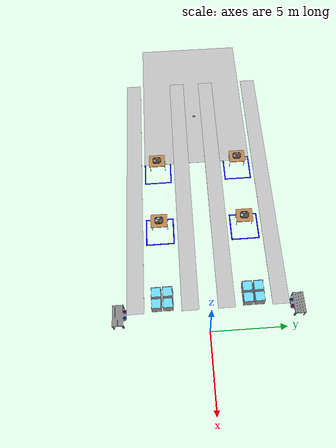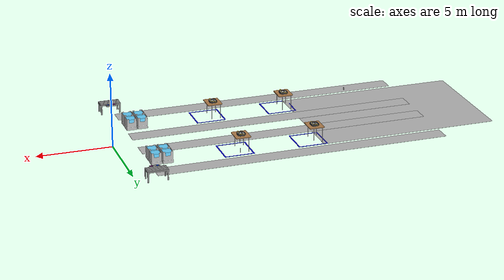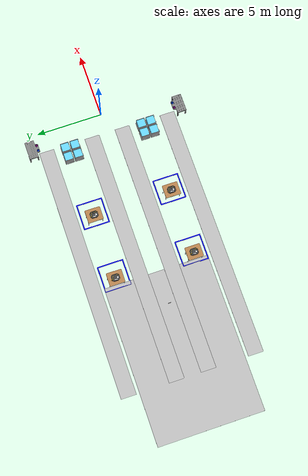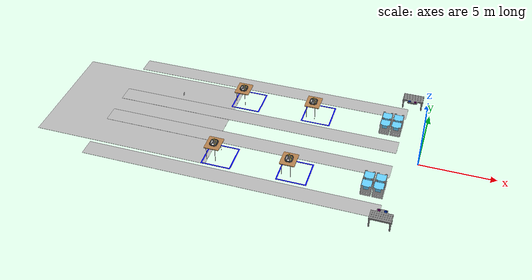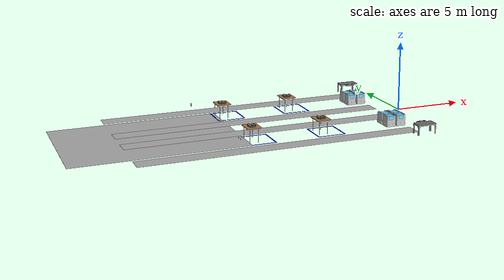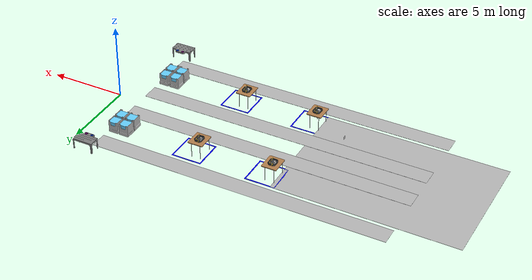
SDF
<sdf version="1.5">
 <world name="world">
  <scene>
   <shadows>0</shadows>
   <grid>0</grid>
   <origin_visual>0</origin_visual>
   <ambient>0.25 0.25 0.25 1</ambient>
   <background>0.5 0.5 0.5 1</background>
  </scene>
  <light type="directional" name="sun">
   <pose>0 0 10 0 0 0</pose>
   <diffuse>0.8 0.8 0.8 1</diffuse>
   <specular>0.2 0.2 0.2 1</specular>
   <attenuation>
    <range>1000</range>
    <constant>0.9</constant>
    <linear>0.01</linear>
    <quadratic>0.001</quadratic>
   </attenuation>
   <direction>-0.5 0.1 -0.9</direction>
  </light>
  <include>
   <name>aruco</name>
   <uri>model://aruco_marker_0</uri>
   <pose>-15.896166 0.011203 2.0 0 0 0</pose>
  </include>
  <include><name>agv_path_1</name><uri>model://agv_path</uri><pose>-1.5 4.8 0 0 0 0</pose></include>
  <include><name>agv_path_2</name><uri>model://agv_path</uri><pose>-1.5 1.2 0 0 0 0</pose></include>
  <include><name>agv_path_3</name><uri>model://agv_path</uri><pose>-1.5 -1.2 0 0 0 0</pose></include>
  <include><name>agv_path_4</name><uri>model://agv_path</uri><pose>-1.5 -4.8 0 0 0 0</pose></include>
  <include><name>warehouse</name><uri>model://warehouse</uri><pose>-19 0 0 0 0 0</pose></include>
  <include><name>bin1</name><uri>model://parts_bin</uri><pose>-1.9 3.375 0 0 0 3.1416</pose></include>
  <include><name>bin2</name><uri>model://parts_bin</uri><pose>-1.9 2.625 0 0 0 3.1416</pose></include>
  <include><name>bin3</name><uri>model://parts_bin</uri><pose>-2.65 2.625 0 0 0 3.1416</pose></include>
  <include><name>bin4</name><uri>model://parts_bin</uri><pose>-2.65 3.375 0 0 0 3.1416</pose></include>
  <include><name>bin5</name><uri>model://parts_bin</uri><pose>-1.9 -3.375 0 0 0 3.1416</pose></include>
  <include><name>bin6</name><uri>model://parts_bin</uri><pose>-1.9 -2.625 0 0 0 3.1416</pose></include>
  <include><name>bin7</name><uri>model://parts_bin</uri><pose>-2.65 -2.625 0 0 0 3.1416</pose></include>
  <include><name>bin8</name><uri>model://parts_bin</uri><pose>-2.65 -3.375 0 0 0 3.1416</pose></include>
  <include><name>assembly_table_1</name><pose>-7.3 3 0 0 0 0</pose><uri>model://assembly_table</uri></include>
  <include>
   <name>assembly_insert_1</name>
   <pose>-7.7 3 1.011 0 0 0</pose>
   <uri>model://assembly_insert</uri>
  </include>
  <joint name="assembly_insert_1_joint" type="fixed">
   <parent>assembly_table_1::assembly_table_link</parent>
   <child>assembly_insert_1::insert_link</child>
  </joint>
  <include><name>assembly_table_2</name><pose>-12.3 3 0 0 0 0</pose><uri>model://assembly_table</uri></include>
  <include>
   <name>assembly_insert_2</name>
   <pose>-12.7 3 1.011 0 0 0</pose>
   <uri>model://assembly_insert</uri>
  </include>
  <include><name>assembly_table_3</name><pose>-7.3 -3 0 0 0 0</pose><uri>model://assembly_table</uri></include>
  <include>
   <name>assembly_insert_3</name>
   <pose>-7.7 -3 1.011 0 0 0</pose>
   <uri>model://assembly_insert</uri>
  </include>
  <include><name>assembly_table_4</name><pose>-12.3 -3 0 0 0 0</pose><uri>model://assembly_table</uri></include>
  <include>
   <name>assembly_insert_4</name>
   <pose>-12.7 -3 1.011 0 0 0</pose>
   <uri>model://assembly_insert</uri>
  </include>
  <include>
   <name>tray_table_1</name>
   <pose>-1.3 -5.84 0 0 0 3.14159</pose>
   <uri>model://kit_tray_table</uri>
  </include>
  <include><name>tray_table_2</name><pose>-1.3 5.84 0 0 0 0</pose><uri>model://kit_tray_table</uri></include>
  <plugin name="task_manager" filename="libTaskManagerPlugin.so"/>
 </world>
</sdf>

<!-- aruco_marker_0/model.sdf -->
<sdf version='1.6'>
  <model name='aruco_marker_0'>
    <link name='link_0'>
      <pose frame=''>0 0 0 0 -0 0</pose>
      <inertial>
        <mass>1</mass>
        <inertia>
          <ixx>0</ixx>
          <ixy>0</ixy>
          <ixz>0</ixz>
          <iyy>0</iyy>
          <iyz>0</iyz>
          <izz>0</izz>
        </inertia>
      </inertial>
      <visual name='visual'>
        <pose frame=''>0 0 0 0 -0 0</pose>
        <geometry>
          <mesh>
            <uri>file://isr-testbed/aruco_marker_0/aruco_marker_0.dae</uri>
            <scale>0.1 0.1 0.1</scale>
          </mesh>
        </geometry>
        <material>
          <lighting>1</lighting>
          <script>
            <uri>file://media/materials/scripts/gazebo.material</uri>
            <name>Gazebo/DepthMapVS</name>
          </script>
          <ambient>0.3 0.3 0.3 1</ambient>
          <diffuse>0.7 0.7 0.7 1</diffuse>
          <specular>0.01 0.01 0.01 1</specular>
          <emissive>0 0 0 1</emissive>
        </material>
        <transparency>0</transparency>
        <cast_shadows>1</cast_shadows>
      </visual>
      <collision name='collision'>
        <laser_retro>0</laser_retro>
        <max_contacts>10</max_contacts>
        <pose frame=''>0 0 0 0 -0 0</pose>
        <geometry>
          <mesh>
            <uri>file://isr-testbed/aruco_marker_0/aruco_marker_0.dae</uri>
            <scale>0.1 0.1 0.1</scale>
          </mesh>
        </geometry>
        <surface>
          <friction>
            <ode>
              <mu>1</mu>
              <mu2>1</mu2>
              <fdir1>0 0 0</fdir1>
              <slip1>0</slip1>
              <slip2>0</slip2>
            </ode>
            <torsional>
              <coefficient>1</coefficient>
              <patch_radius>0</patch_radius>
              <surface_radius>0</surface_radius>
              <use_patch_radius>1</use_patch_radius>
              <ode>
                <slip>0</slip>
              </ode>
            </torsional>
          </friction>
          <bounce>
            <restitution_coefficient>0</restitution_coefficient>
            <threshold>1e+06</threshold>
          </bounce>
          <contact>
            <collide_without_contact>0</collide_without_contact>
            <collide_without_contact_bitmask>1</collide_without_contact_bitmask>
            <collide_bitmask>1</collide_bitmask>
            <ode>
              <soft_cfm>0</soft_cfm>
              <soft_erp>0.2</soft_erp>
              <kp>1e+13</kp>
              <kd>1</kd>
              <max_vel>0.01</max_vel>
              <min_depth>0</min_depth>
            </ode>
            <bullet>
              <split_impulse>1</split_impulse>
              <split_impulse_penetration_threshold>-0.01</split_impulse_penetration_threshold>
              <soft_cfm>0</soft_cfm>
              <soft_erp>0.2</soft_erp>
              <kp>1e+13</kp>
              <kd>1</kd>
            </bullet>
          </contact>
        </surface>
      </collision>
    </link>
    <static>1</static>
    <allow_auto_disable>1</allow_auto_disable>
  </model>
</sdf>

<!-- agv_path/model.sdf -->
<sdf version='1.6'>
  <model name='agv_path'>
    <static>true</static>

    <link name="link">
      <visual name="visual">
        <geometry>
          <mesh>
            <uri>model://agv_path/meshes/path.dae</uri>
          </mesh>
        </geometry>
      </visual>
    </link>
  </model>
</sdf>

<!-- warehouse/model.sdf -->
<sdf version="1.5">
  <model name="warehouse">
    <static>true</static>

    <link name="link">
      <collision name="collision">
        <geometry>
          <mesh>
            <uri>model://warehouse/meshes/warehouse.dae</uri>
            <scale>1 1 1</scale>
          </mesh>
        </geometry>
      </collision>
      <visual name="visual">
        <geometry>
          <mesh>
            <uri>model://warehouse/meshes/warehouse.dae</uri>
            <scale>1 1 1</scale>
          </mesh>
        </geometry>
      </visual>
    </link>
  </model>
</sdf>

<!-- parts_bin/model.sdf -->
<sdf version="1.6">
  <model name="parts_bin">
    <static>true</static>
    <link name="link">
      <visual name="exterior_visual">
        <geometry>
          <mesh>
            <uri>model://parts_bin/meshes/bin_exterior.dae</uri>
          </mesh>
        </geometry>
      </visual>

      <visual name="interior_visual">
        <geometry>
          <mesh>
            <uri>model://parts_bin/meshes/bin_interior.stl</uri>
          </mesh>
        </geometry>
        <material>
          <ambient>0.4 0.82 1.0 1.0</ambient>
          <diffuse>0.4 0.82 1.0 1.0</diffuse>
        </material>
      </visual>

      <collision name="interior_collision">
        <geometry>
          <mesh>
            <uri>model://parts_bin/meshes/bin_interior.stl</uri>
          </mesh>
        </geometry>
      </collision>

      <collision name="exterior_collision">
        <geometry>
          <mesh>
            <uri>model://parts_bin/meshes/bin_exterior.stl</uri>
          </mesh>
        </geometry>
      </collision>

    </link>
  </model>
</sdf>

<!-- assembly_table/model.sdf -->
<sdf version="1.6">
  <model name="assembly_table">
    <static>true</static>

    <link name="assembly_table_link">
      <visual name="table_top">
        <geometry>
          <mesh>
            <uri>model://assembly_table/meshes/table_top.stl</uri>
          </mesh>
        </geometry>
        <material>
          <script>
            <uri>file://media/materials/scripts/gazebo.material</uri>
            <name>Gazebo/Wood</name>
          </script>
        </material>
      </visual>

      <visual name="leg1">
        <geometry>
          <mesh>
            <uri>model://assembly_table/meshes/leg1.stl</uri>
          </mesh>
        </geometry>
        <material>
          <ambient>0.6 0.6 0.6 1.0</ambient>
          <diffuse>0.6 0.6 0.6 1.0</diffuse>
        </material>
      </visual>

      <visual name="leg2">
        <geometry>
          <mesh>
            <uri>model://assembly_table/meshes/leg2.stl</uri>
          </mesh>
        </geometry>
        <material>
          <ambient>0.6 0.6 0.6 1.0</ambient>
          <diffuse>0.6 0.6 0.6 1.0</diffuse>
        </material>
      </visual>

      <visual name="leg3">
        <geometry>
          <mesh>
            <uri>model://assembly_table/meshes/leg3.stl</uri>
          </mesh>
        </geometry>
        <material>
          <ambient>0.6 0.6 0.6 1.0</ambient>
          <diffuse>0.6 0.6 0.6 1.0</diffuse>
        </material>
      </visual>

      <visual name="leg4">
        <geometry>
          <mesh>
            <uri>model://assembly_table/meshes/leg4.stl</uri>
          </mesh>
        </geometry>
        <material>
          <ambient>0.6 0.6 0.6 1.0</ambient>
          <diffuse>0.6 0.6 0.6 1.0</diffuse>
        </material>
      </visual>

      <visual name="tape">
        <geometry>
          <mesh>
            <uri>model://assembly_table/meshes/tape_outline.stl</uri>
          </mesh>
        </geometry>
        <material>
          <ambient>0.0 0.0 1.0 1.0</ambient>
          <diffuse>0.0 0.0 1.0 1.0</diffuse>
        </material>
      </visual>

      <collision name="collision">
        <geometry>
          <mesh>
            <uri>model://assembly_table/meshes/assembly_table_collision.stl</uri>
          </mesh>
        </geometry>
      </collision>

    </link>
  </model>
</sdf>

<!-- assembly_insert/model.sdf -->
<sdf version="1.6">
  <model name="insert">
    <static>true</static>
    <allow_auto_disable>false</allow_auto_disable>

    <kinematic>0</kinematic>
    <inertial>
      <mass>20</mass>
      <inertia>
        <ixx>0.0009</ixx>
        <ixy>0</ixy>
        <ixz>0</ixz>
        <iyy>0.0009</iyy>
        <iyz>0</iyz>
        <izz>0.0012</izz>
      </inertia>
    </inertial>

    <link name="insert_link">
      <visual name="base">
        <geometry>
          <mesh>
            <uri>model://assembly_insert/meshes/insert_base.stl</uri>
          </mesh>
        </geometry>
        <material>
          <ambient>0.25 0.25 0.25 1.0</ambient>
          <diffuse>0.25 0.25 0.25 1.0</diffuse>
        </material>
      </visual>

      <visual name="mounts">
        <geometry>
          <mesh>
            <uri>model://assembly_insert/meshes/mounts.stl</uri>
          </mesh>
        </geometry>
        <material>
          <ambient>0.8 0.8 0.8 1.0</ambient>
          <diffuse>0.8 0.8 0.8 1.0</diffuse>
        </material>
      </visual>

      <visual name="hardware">
        <geometry>
          <mesh>
            <uri>model://assembly_insert/meshes/hardware.stl</uri>
          </mesh>
        </geometry>
        <material>
          <ambient>0.35 0.35 0.35 1.0</ambient>
          <diffuse>0.35 0.35 0.35 1.0</diffuse>
        </material>
      </visual>

      <visual name="pipe_1">
        <geometry>
          <mesh>
            <uri>model://assembly_insert/meshes/pipe_1.stl</uri>
          </mesh>
        </geometry>
        <material>
          <ambient>1.0 0.82 0.10 1.0</ambient>
          <diffuse>1.0 0.82 0.10 1.0</diffuse>
        </material>
      </visual>

      <visual name="pipe_2">
        <geometry>
          <mesh>
            <uri>model://assembly_insert/meshes/pipe_2.stl</uri>
          </mesh>
        </geometry>
        <material>
          <ambient>1.0 0.82 0.10 1.0</ambient>
          <diffuse>1.0 0.82 0.10 1.0</diffuse>
        </material>
      </visual>

      <visual name="screen">
        <geometry>
          <mesh>
            <uri>model://assembly_insert/meshes/screen.stl</uri>
          </mesh>
        </geometry>
        <material>
          <ambient>1.0 1.0 1.0 1.0</ambient>
          <diffuse>1.0 1.0 1.0 1.0</diffuse>
        </material>
      </visual>

      <collision name="base_collision">
        <geometry>
          <mesh>
            <uri>model://assembly_insert/meshes/insert_collision.stl</uri>
          </mesh>
        </geometry>
        <surface>
          <contact>
            <ode>
              <max_vel>0.0</max_vel>
              <min_depth>0.001</min_depth>
            </ode>
          </contact>
        </surface>
      </collision>
    </link>

    <link name="regulator_contact">
      <pose frame=''>0 0 0 0 0 0</pose>
      <collision name="regulator_contact">
        <geometry>
          <mesh>
            <uri>model://assembly_insert/meshes/regulator_contact.stl</uri>
          </mesh>
        </geometry>
        <surface>
          <contact>
            <ode>
              <max_vel>0.0</max_vel>
              <min_depth>0.001</min_depth>
            </ode>
          </contact>
        </surface>
      </collision>

      <sensor type="contact" name="regulator_contact_sensor">
        <update_rate>10</update_rate>
        <contact>
          <collision>regulator_contact</collision>
        </contact>
      </sensor>
    </link>

    <link name="battery_contact">
      <collision name="battery_contact">
        <geometry>
          <mesh>
            <uri>model://assembly_insert/meshes/battery_contact.stl</uri>
          </mesh>
        </geometry>
        <surface>
          <contact>
            <ode>
              <max_vel>0.0</max_vel>
              <min_depth>0.001</min_depth>
            </ode>
          </contact>
        </surface>
      </collision>

      <sensor type="contact" name="battery_contact_sensor">
        <update_rate>10</update_rate>
        <contact>
          <collision>battery_contact</collision>
        </contact>
      </sensor>
    </link>

    <link name="pump_contact">
      <pose>0 0 .002 0 0 0</pose>
      <collision name="pump_contact">
        <geometry>
          <mesh>
            <uri>model://assembly_insert/meshes/pump_contact.stl</uri>
          </mesh>
        </geometry>
        <surface>
          <contact>
            <ode>
              <max_vel>0.0</max_vel>
              <min_depth>0.001</min_depth>
            </ode>
          </contact>
        </surface>
      </collision>

      <sensor type="contact" name="pump_contact_sensor">
        <update_rate>10</update_rate>
        <contact>
          <collision>pump_contact</collision>
        </contact>
      </sensor>
    </link>

    <link name="sensor_contact">
      <collision name="sensor_contact">
        <geometry>
          <mesh>
            <uri>model://assembly_insert/meshes/sensor_contact.stl</uri>
          </mesh>
        </geometry>
        <surface>
          <contact>
            <ode>
              <max_vel>0.0</max_vel>
              <min_depth>0.001</min_depth>
            </ode>
          </contact>
        </surface>
      </collision>

      <sensor type="contact" name="sensor_contact_sensor">
        <update_rate>10</update_rate>
        <contact>
          <collision>sensor_contact</collision>
        </contact>
      </sensor>
    </link>

    <plugin filename="libassembly_lock_plugin.so" name="assembly_lock_pump">
      <assembly_part_type>pump</assembly_part_type>
    </plugin>
    <plugin filename="libassembly_lock_plugin.so" name="assembly_lock_regulator">
      <assembly_part_type>regulator</assembly_part_type>
    </plugin>
    <plugin filename="libassembly_lock_plugin.so" name="assembly_lock_sensor">
      <assembly_part_type>sensor</assembly_part_type>
    </plugin>
    <plugin filename="libassembly_lock_plugin.so" name="assembly_lock_battery">
      <assembly_part_type>battery</assembly_part_type>
    </plugin>
    <plugin filename="libassembly_state_publisher.so" name="assembly_state_publisher">
      <ros></ros>
    </plugin>
  </model>
</sdf>

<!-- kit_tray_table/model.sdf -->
<sdf version="1.6">
  <model name="kit_tray_table">
    <static>true</static>

    <link name="kit_tray_table_link">
      <visual name="table">
        <geometry>
          <mesh>
            <uri>model://kit_tray_table/meshes/kit_tray_table.stl</uri>
          </mesh>
        </geometry>
        <material>
          <ambient>0.5 0.5 0.5 1.0</ambient>
          <diffuse>0.5 0.5 0.5 1.0</diffuse>
        </material>
      </visual>

      <visual name="tool_changer_1">
        <geometry>
          <mesh>
            <uri>model://kit_tray_table/meshes/tool_changer_1.stl</uri>
          </mesh>
        </geometry>
        <material>
          <ambient>0.00 0.18 0.70 1.0</ambient>
          <diffuse>0.00 0.18 0.70 1.0</diffuse>
        </material>
      </visual>

      <visual name="tool_changer_2">
        <geometry>
          <mesh>
            <uri>model://kit_tray_table/meshes/tool_changer_2.stl</uri>
          </mesh>
        </geometry>
        <material>
          <ambient>0.4 0.0 0.4 1.0</ambient>
          <diffuse>0.4 0.0 0.4 1.0</diffuse>
        </material>
      </visual>

      <collision name="table_exterior">
        <geometry>
          <mesh>
            <uri>model://kit_tray_table/meshes/table_collision.stl</uri>
          </mesh>
        </geometry>
      </collision>

      <collision name="table_top">
        <pose>0 0 0.7 0 0 0</pose>
        <geometry>
          <box>
            <size>1.34 0.68 0.05</size>
          </box>
        </geometry>
      </collision>

      <collision name="tool_changer_1_collision">
        <geometry>
          <mesh>
            <uri>model://kit_tray_table/meshes/tool_changer_1.stl</uri>
          </mesh>
        </geometry>
      </collision>

      <collision name="tool_changer_2_collision">
        <geometry>
          <mesh>
            <uri>model://kit_tray_table/meshes/tool_changer_2.stl</uri>
          </mesh>
        </geometry>
      </collision>

    </link>
  </model>
</sdf>
